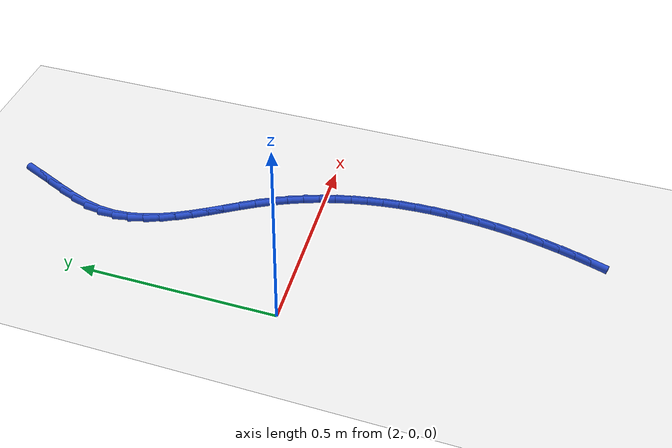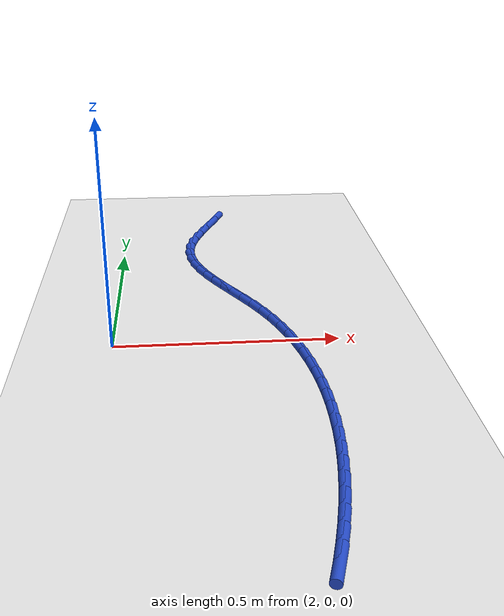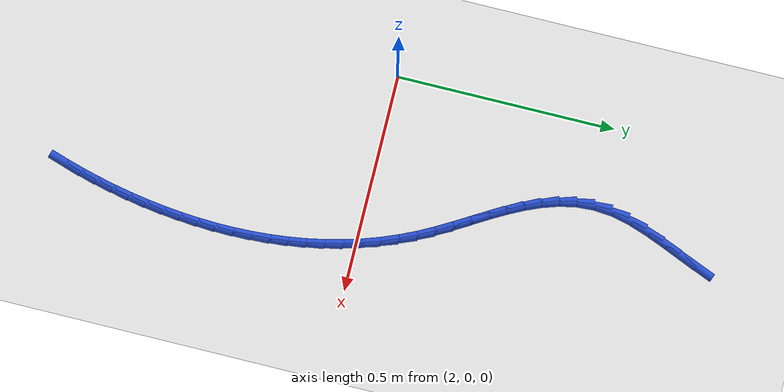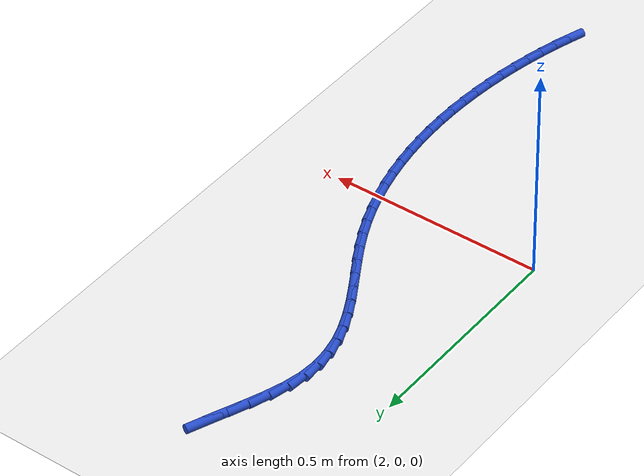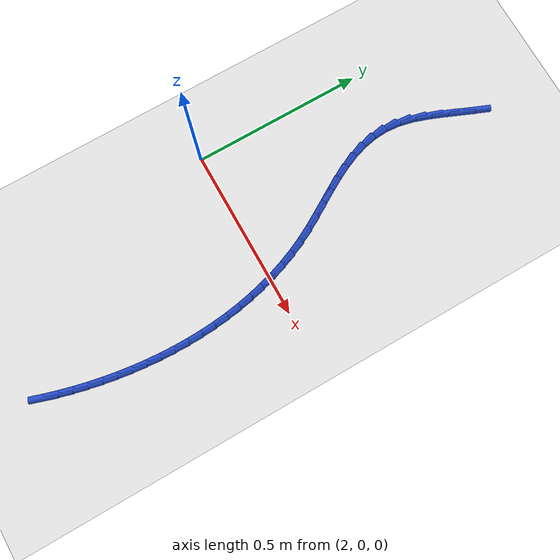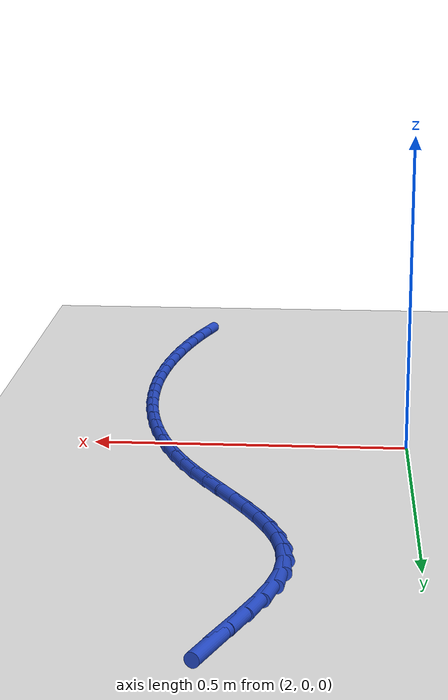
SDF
<sdf version="1.6">
 <world name="default">
  <model name="ground_plane">
   <static>1</static>
   <link name="link">
    <collision name="collision">
     <geometry><plane><normal>0 0 1</normal><size>100 100</size></plane></geometry>
     <surface><friction><ode><mu>100</mu><mu2>50</mu2></ode></friction></surface>
    </collision>
    <visual name="visual">
     <cast_shadows>0</cast_shadows>
     <geometry><plane><normal>0 0 1</normal><size>100 100</size></plane></geometry>
     <material>
      <script><uri>file://media/materials/scripts/gazebo.material</uri><name>Gazebo/WhiteGlow</name></script>
     </material>
    </visual>
   </link>
  </model>
  <model name="line">
   <link name="link_91">
    <pose>2.2610066684369903 0.7542414206402973 0.01 0 1.57 1.1820607455519445</pose>
    <collision name="collision">
     <geometry><cylinder><radius>0.01</radius><length>0.08</length></cylinder></geometry>
    </collision>
    <visual name="visual">
     <material>
      <script><name>Gazebo/Blue</name><uri>file://media/materials/scripts/gazebo.material</uri></script>
     </material>
     <geometry><cylinder><radius>0.01</radius><length>0.08</length></cylinder></geometry>
    </visual>
   </link>
   <link name="link_92">
    <pose>2.24421451696965 0.7132427169287047 0.01 0 1.57 1.1706019761299233</pose>
    <collision name="collision">
     <geometry><cylinder><radius>0.01</radius><length>0.08</length></cylinder></geometry>
    </collision>
    <visual name="visual">
     <material>
      <script><name>Gazebo/Blue</name><uri>file://media/materials/scripts/gazebo.material</uri></script>
     </material>
     <geometry><cylinder><radius>0.01</radius><length>0.08</length></cylinder></geometry>
    </visual>
   </link>
   <link name="link_93">
    <pose>2.2260828225703784 0.6703804537638421 0.01 0 1.57 1.1925119328497316</pose>
    <collision name="collision">
     <geometry><cylinder><radius>0.01</radius><length>0.08</length></cylinder></geometry>
    </collision>
    <visual name="visual">
     <material>
      <script><name>Gazebo/Blue</name><uri>file://media/materials/scripts/gazebo.material</uri></script>
     </material>
     <geometry><cylinder><radius>0.01</radius><length>0.08</length></cylinder></geometry>
    </visual>
   </link>
   <link name="link_94">
    <pose>2.2086667552436507 0.6265581557529525 0.01 0 1.57 1.2486560961878608</pose>
    <collision name="collision">
     <geometry><cylinder><radius>0.01</radius><length>0.08</length></cylinder></geometry>
    </collision>
    <visual name="visual">
     <material>
      <script><name>Gazebo/Blue</name><uri>file://media/materials/scripts/gazebo.material</uri></script>
     </material>
     <geometry><cylinder><radius>0.01</radius><length>0.08</length></cylinder></geometry>
    </visual>
   </link>
   <link name="link_95">
    <pose>2.194021484993945 0.5826793475032769 0.01 0 1.57 1.3464503707937263</pose>
    <collision name="collision">
     <geometry><cylinder><radius>0.01</radius><length>0.08</length></cylinder></geometry>
    </collision>
    <visual name="visual">
     <material>
      <script><name>Gazebo/Blue</name><uri>file://media/materials/scripts/gazebo.material</uri></script>
     </material>
     <geometry><cylinder><radius>0.01</radius><length>0.08</length></cylinder></geometry>
    </visual>
   </link>
   <link name="link_96">
    <pose>2.184202181825737 0.5396475536220584 0.01 0 1.57 1.4885330735675042</pose>
    <collision name="collision">
     <geometry><cylinder><radius>0.01</radius><length>0.08</length></cylinder></geometry>
    </collision>
    <visual name="visual">
     <material>
      <script><name>Gazebo/Blue</name><uri>file://media/materials/scripts/gazebo.material</uri></script>
     </material>
     <geometry><cylinder><radius>0.01</radius><length>0.08</length></cylinder></geometry>
    </visual>
   </link>
   <link name="link_97">
    <pose>2.180782926928217 0.4981765649890734 0.01 0 1.57 -1.505136977350762</pose>
    <collision name="collision">
     <geometry><cylinder><radius>0.01</radius><length>0.08</length></cylinder></geometry>
    </collision>
    <visual name="visual">
     <material>
      <script><name>Gazebo/Blue</name><uri>file://media/materials/scripts/gazebo.material</uri></script>
     </material>
     <geometry><cylinder><radius>0.01</radius><length>0.08</length></cylinder></geometry>
    </visual>
   </link>
   <link name="link_98">
    <pose>2.183410227724611 0.4582199682474619 0.01 0 1.57 -1.370869694513156</pose>
    <collision name="collision">
     <geometry><cylinder><radius>0.01</radius><length>0.08</length></cylinder></geometry>
    </collision>
    <visual name="visual">
     <material>
      <script><name>Gazebo/Blue</name><uri>file://media/materials/scripts/gazebo.material</uri></script>
     </material>
     <geometry><cylinder><radius>0.01</radius><length>0.08</length></cylinder></geometry>
    </visual>
   </link>
   <link name="link_99">
    <pose>2.191247892225167 0.41954098111895355 0.01 0 1.57 -1.2570587126423</pose>
    <collision name="collision">
     <geometry><cylinder><radius>0.01</radius><length>0.08</length></cylinder></geometry>
    </collision>
    <visual name="visual">
     <material>
      <script><name>Gazebo/Blue</name><uri>file://media/materials/scripts/gazebo.material</uri></script>
     </material>
     <geometry><cylinder><radius>0.01</radius><length>0.08</length></cylinder></geometry>
    </visual>
   </link>
   <link name="link_100">
    <pose>2.203459728440049 0.38190282132524256 0.01 0 1.57 -1.166735882184935</pose>
    <collision name="collision">
     <geometry><cylinder><radius>0.01</radius><length>0.08</length></cylinder></geometry>
    </collision>
    <visual name="visual">
     <material>
      <script><name>Gazebo/Blue</name><uri>file://media/materials/scripts/gazebo.material</uri></script>
     </material>
     <geometry><cylinder><radius>0.01</radius><length>0.08</length></cylinder></geometry>
    </visual>
   </link>
   <link name="link_101">
    <pose>2.219209544379419 0.34506870658802535 0.01 0 1.57 -1.1001547862458474</pose>
    <collision name="collision">
     <geometry><cylinder><radius>0.01</radius><length>0.08</length></cylinder></geometry>
    </collision>
    <visual name="visual">
     <material>
      <script><name>Gazebo/Blue</name><uri>file://media/materials/scripts/gazebo.material</uri></script>
     </material>
     <geometry><cylinder><radius>0.01</radius><length>0.08</length></cylinder></geometry>
    </visual>
   </link>
   <link name="link_102">
    <pose>2.2376611480534434 0.3088018546289967 0.01 0 1.57 -1.0562324601915534</pose>
    <collision name="collision">
     <geometry><cylinder><radius>0.01</radius><length>0.08</length></cylinder></geometry>
    </collision>
    <visual name="visual">
     <material>
      <script><name>Gazebo/Blue</name><uri>file://media/materials/scripts/gazebo.material</uri></script>
     </material>
     <geometry><cylinder><radius>0.01</radius><length>0.08</length></cylinder></geometry>
    </visual>
   </link>
   <link name="link_103">
    <pose>2.2579783474722843 0.2728654831698527 0.01 0 1.57 -1.0336450305703406</pose>
    <collision name="collision">
     <geometry><cylinder><radius>0.01</radius><length>0.08</length></cylinder></geometry>
    </collision>
    <visual name="visual">
     <material>
      <script><name>Gazebo/Blue</name><uri>file://media/materials/scripts/gazebo.material</uri></script>
     </material>
     <geometry><cylinder><radius>0.01</radius><length>0.08</length></cylinder></geometry>
    </visual>
   </link>
   <link name="link_104">
    <pose>2.279324950646106 0.237022809932288 0.01 0 1.57 -1.0314326390760127</pose>
    <collision name="collision">
     <geometry><cylinder><radius>0.01</radius><length>0.08</length></cylinder></geometry>
    </collision>
    <visual name="visual">
     <material>
      <script><name>Gazebo/Blue</name><uri>file://media/materials/scripts/gazebo.material</uri></script>
     </material>
     <geometry><cylinder><radius>0.01</radius><length>0.08</length></cylinder></geometry>
    </visual>
   </link>
   <link name="link_105">
    <pose>2.3008647655850734 0.20103705263799895 0.01 0 1.57 -1.049238990164021</pose>
    <collision name="collision">
     <geometry><cylinder><radius>0.01</radius><length>0.08</length></cylinder></geometry>
    </collision>
    <visual name="visual">
     <material>
      <script><name>Gazebo/Blue</name><uri>file://media/materials/scripts/gazebo.material</uri></script>
     </material>
     <geometry><cylinder><radius>0.01</radius><length>0.08</length></cylinder></geometry>
    </visual>
   </link>
   <link name="link_106">
    <pose>2.3217616002993493 0.1646714290086802 0.01 0 1.57 -1.0872302263054796</pose>
    <collision name="collision">
     <geometry><cylinder><radius>0.01</radius><length>0.08</length></cylinder></geometry>
    </collision>
    <visual name="visual">
     <material>
      <script><name>Gazebo/Blue</name><uri>file://media/materials/scripts/gazebo.material</uri></script>
     </material>
     <geometry><cylinder><radius>0.01</radius><length>0.08</length></cylinder></geometry>
    </visual>
   </link>
   <link name="link_107">
    <pose>2.341182349088681 0.12769022891658344 0.01 0 1.57 -1.1385267061418352</pose>
    <collision name="collision">
     <geometry><cylinder><radius>0.01</radius><length>0.08</length></cylinder></geometry>
    </collision>
    <visual name="visual">
     <material>
      <script><name>Gazebo/Blue</name><uri>file://media/materials/scripts/gazebo.material</uri></script>
     </material>
     <geometry><cylinder><radius>0.01</radius><length>0.08</length></cylinder></geometry>
    </visual>
   </link>
   <link name="link_108">
    <pose>2.358589741657251 0.08996051291847713 0.01 0 1.57 -1.189755220341765</pose>
    <collision name="collision">
     <geometry><cylinder><radius>0.01</radius><length>0.08</length></cylinder></geometry>
    </collision>
    <visual name="visual">
     <material>
      <script><name>Gazebo/Blue</name><uri>file://media/materials/scripts/gazebo.material</uri></script>
     </material>
     <geometry><cylinder><radius>0.01</radius><length>0.08</length></cylinder></geometry>
    </visual>
   </link>
   <link name="link_109">
    <pose>2.3739834393836476 0.05153586703391078 0.01 0 1.57 -1.2393738835605062</pose>
    <collision name="collision">
     <geometry><cylinder><radius>0.01</radius><length>0.08</length></cylinder></geometry>
    </collision>
    <visual name="visual">
     <material>
      <script><name>Gazebo/Blue</name><uri>file://media/materials/scripts/gazebo.material</uri></script>
     </material>
     <geometry><cylinder><radius>0.01</radius><length>0.08</length></cylinder></geometry>
    </visual>
   </link>
   <link name="link_110">
    <pose>2.387419847997393 0.012489589783710611 0.01 0 1.57 -1.287302566101095</pose>
    <collision name="collision">
     <geometry><cylinder><radius>0.01</radius><length>0.08</length></cylinder></geometry>
    </collision>
    <visual name="visual">
     <material>
      <script><name>Gazebo/Blue</name><uri>file://media/materials/scripts/gazebo.material</uri></script>
     </material>
     <geometry><cylinder><radius>0.01</radius><length>0.08</length></cylinder></geometry>
    </visual>
   </link>
   <link name="link_111">
    <pose>2.398955373228012 -0.02710502031129534 0.01 0 1.57 -1.3334980267928214</pose>
    <collision name="collision">
     <geometry><cylinder><radius>0.01</radius><length>0.08</length></cylinder></geometry>
    </collision>
    <visual name="visual">
     <material>
      <script><name>Gazebo/Blue</name><uri>file://media/materials/scripts/gazebo.material</uri></script>
     </material>
     <geometry><cylinder><radius>0.01</radius><length>0.08</length></cylinder></geometry>
    </visual>
   </link>
   <link name="link_112">
    <pose>2.4086464208050264 -0.06717466473028039 0.01 0 1.57 -1.377949877189447</pose>
    <collision name="collision">
     <geometry><cylinder><radius>0.01</radius><length>0.08</length></cylinder></geometry>
    </collision>
    <visual name="visual">
     <material>
      <script><name>Gazebo/Blue</name><uri>file://media/materials/scripts/gazebo.material</uri></script>
     </material>
     <geometry><cylinder><radius>0.01</radius><length>0.08</length></cylinder></geometry>
    </visual>
   </link>
   <link name="link_113">
    <pose>2.4165493964579605 -0.10764604495241739 0.01 0 1.57 -1.4206760334814053</pose>
    <collision name="collision">
     <geometry><cylinder><radius>0.01</radius><length>0.08</length></cylinder></geometry>
    </collision>
    <visual name="visual">
     <material>
      <script><name>Gazebo/Blue</name><uri>file://media/materials/scripts/gazebo.material</uri></script>
     </material>
     <geometry><cylinder><radius>0.01</radius><length>0.08</length></cylinder></geometry>
    </visual>
   </link>
   <link name="link_114">
    <pose>2.422720705916336 -0.14844586245688018 0.01 0 1.57 -1.4617180617436696</pose>
    <collision name="collision">
     <geometry><cylinder><radius>0.01</radius><length>0.08</length></cylinder></geometry>
    </collision>
    <visual name="visual">
     <material>
      <script><name>Gazebo/Blue</name><uri>file://media/materials/scripts/gazebo.material</uri></script>
     </material>
     <geometry><cylinder><radius>0.01</radius><length>0.08</length></cylinder></geometry>
    </visual>
   </link>
   <link name="link_115">
    <pose>2.427216754909678 -0.1895008187228397 0.01 0 1.57 -1.5011367224808223</pose>
    <collision name="collision">
     <geometry><cylinder><radius>0.01</radius><length>0.08</length></cylinder></geometry>
    </collision>
    <visual name="visual">
     <material>
      <script><name>Gazebo/Blue</name><uri>file://media/materials/scripts/gazebo.material</uri></script>
     </material>
     <geometry><cylinder><radius>0.01</radius><length>0.08</length></cylinder></geometry>
    </visual>
   </link>
   <link name="link_116">
    <pose>2.430093949167509 -0.2307376152294697 0.01 0 1.57 -1.539007921446994</pose>
    <collision name="collision">
     <geometry><cylinder><radius>0.01</radius><length>0.08</length></cylinder></geometry>
    </collision>
    <visual name="visual">
     <material>
      <script><name>Gazebo/Blue</name><uri>file://media/materials/scripts/gazebo.material</uri></script>
     </material>
     <geometry><cylinder><radius>0.01</radius><length>0.08</length></cylinder></geometry>
    </visual>
   </link>
   <link name="link_117">
    <pose>2.43140869441935 -0.27208295345594297 0.01 0 1.57 1.566173466136651</pose>
    <collision name="collision">
     <geometry><cylinder><radius>0.01</radius><length>0.08</length></cylinder></geometry>
    </collision>
    <visual name="visual">
     <material>
      <script><name>Gazebo/Blue</name><uri>file://media/materials/scripts/gazebo.material</uri></script>
     </material>
     <geometry><cylinder><radius>0.01</radius><length>0.08</length></cylinder></geometry>
    </visual>
   </link>
   <link name="link_118">
    <pose>2.4312173963947274 -0.31346353488143364 0.01 0 1.57 1.5311259236207426</pose>
    <collision name="collision">
     <geometry><cylinder><radius>0.01</radius><length>0.08</length></cylinder></geometry>
    </collision>
    <visual name="visual">
     <material>
      <script><name>Gazebo/Blue</name><uri>file://media/materials/scripts/gazebo.material</uri></script>
     </material>
     <geometry><cylinder><radius>0.01</radius><length>0.08</length></cylinder></geometry>
    </visual>
   </link>
   <link name="link_119">
    <pose>2.429576460823163 -0.3548060609851123 0.01 0 1.57 1.4973395728515049</pose>
    <collision name="collision">
     <geometry><cylinder><radius>0.01</radius><length>0.08</length></cylinder></geometry>
    </collision>
    <visual name="visual">
     <material>
      <script><name>Gazebo/Blue</name><uri>file://media/materials/scripts/gazebo.material</uri></script>
     </material>
     <geometry><cylinder><radius>0.01</radius><length>0.08</length></cylinder></geometry>
    </visual>
   </link>
   <link name="link_120">
    <pose>2.4265422934341805 -0.3960372332461529 0.01 0 1.57 1.4647073611202177</pose>
    <collision name="collision">
     <geometry><cylinder><radius>0.01</radius><length>0.08</length></cylinder></geometry>
    </collision>
    <visual name="visual">
     <material>
      <script><name>Gazebo/Blue</name><uri>file://media/materials/scripts/gazebo.material</uri></script>
     </material>
     <geometry><cylinder><radius>0.01</radius><length>0.08</length></cylinder></geometry>
    </visual>
   </link>
   <link name="link_121">
    <pose>2.422171299957303 -0.4370837531437285 0.01 0 1.57 1.433119002860905</pose>
    <collision name="collision">
     <geometry><cylinder><radius>0.01</radius><length>0.08</length></cylinder></geometry>
    </collision>
    <visual name="visual">
     <material>
      <script><name>Gazebo/Blue</name><uri>file://media/materials/scripts/gazebo.material</uri></script>
     </material>
     <geometry><cylinder><radius>0.01</radius><length>0.08</length></cylinder></geometry>
    </visual>
   </link>
   <link name="link_122">
    <pose>2.416519886122053 -0.4778723221570125 0.01 0 1.57 1.4024618046197774</pose>
    <collision name="collision">
     <geometry><cylinder><radius>0.01</radius><length>0.08</length></cylinder></geometry>
    </collision>
    <visual name="visual">
     <material>
      <script><name>Gazebo/Blue</name><uri>file://media/materials/scripts/gazebo.material</uri></script>
     </material>
     <geometry><cylinder><radius>0.01</radius><length>0.08</length></cylinder></geometry>
    </visual>
   </link>
   <link name="link_123">
    <pose>2.4096444576579543 -0.5183296417651762 0.01 0 1.57 1.3726210755124022</pose>
    <collision name="collision">
     <geometry><cylinder><radius>0.01</radius><length>0.08</length></cylinder></geometry>
    </collision>
    <visual name="visual">
     <material>
      <script><name>Gazebo/Blue</name><uri>file://media/materials/scripts/gazebo.material</uri></script>
     </material>
     <geometry><cylinder><radius>0.01</radius><length>0.08</length></cylinder></geometry>
    </visual>
   </link>
   <link name="link_124">
    <pose>2.4016014202945306 -0.5583824134473933 0.01 0 1.57 1.3434801652338801</pose>
    <collision name="collision">
     <geometry><cylinder><radius>0.01</radius><length>0.08</length></cylinder></geometry>
    </collision>
    <visual name="visual">
     <material>
      <script><name>Gazebo/Blue</name><uri>file://media/materials/scripts/gazebo.material</uri></script>
     </material>
     <geometry><cylinder><radius>0.01</radius><length>0.08</length></cylinder></geometry>
    </visual>
   </link>
   <link name="link_125">
    <pose>2.392447179761304 -0.5979573386828365 0.01 0 1.57 1.3149201618078323</pose>
    <collision name="collision">
     <geometry><cylinder><radius>0.01</radius><length>0.08</length></cylinder></geometry>
    </collision>
    <visual name="visual">
     <material>
      <script><name>Gazebo/Blue</name><uri>file://media/materials/scripts/gazebo.material</uri></script>
     </material>
     <geometry><cylinder><radius>0.01</radius><length>0.08</length></cylinder></geometry>
    </visual>
   </link>
   <link name="link_126">
    <pose>2.382238141787798 -0.63698111895068 0.01 0 1.57 1.2868192692249472</pose>
    <collision name="collision">
     <geometry><cylinder><radius>0.01</radius><length>0.08</length></cylinder></geometry>
    </collision>
    <visual name="visual">
     <material>
      <script><name>Gazebo/Blue</name><uri>file://media/materials/scripts/gazebo.material</uri></script>
     </material>
     <geometry><cylinder><radius>0.01</radius><length>0.08</length></cylinder></geometry>
    </visual>
   </link>
   <link name="link_127">
    <pose>2.371030712103537 -0.6753804557300942 0.01 0 1.57 1.2590229413288012</pose>
    <collision name="collision">
     <geometry><cylinder><radius>0.01</radius><length>0.08</length></cylinder></geometry>
    </collision>
    <visual name="visual">
     <material>
      <script><name>Gazebo/Blue</name><uri>file://media/materials/scripts/gazebo.material</uri></script>
     </material>
     <geometry><cylinder><radius>0.01</radius><length>0.08</length></cylinder></geometry>
    </visual>
   </link>
  </model>
 </world>
</sdf>
